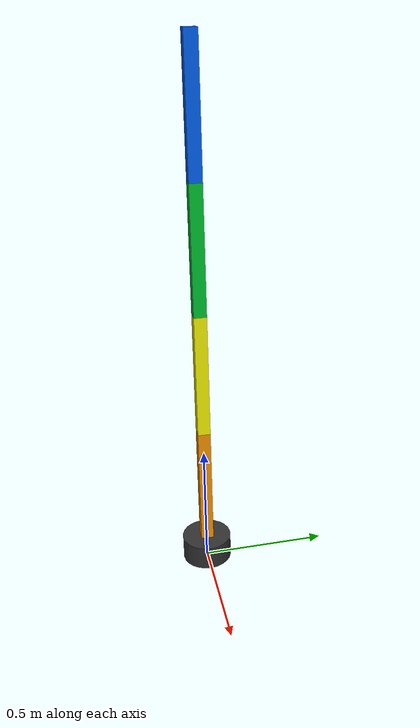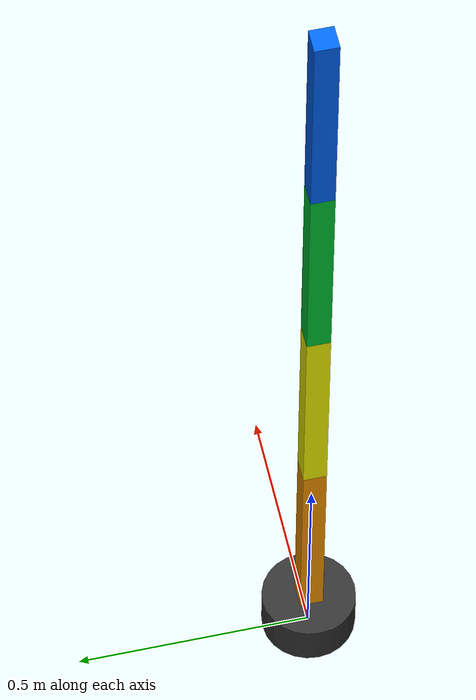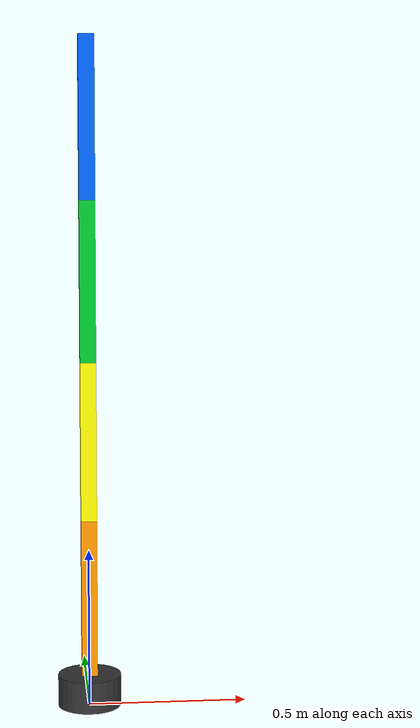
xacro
<?xml version="1.0"?>
<robot xmlns:xacro="http://www.ros.org/wiki/xacro" name="physical_ai_robot">

  <xacro:property name="base_radius" value="0.1"/>
  <xacro:property name="base_height" value="0.1"/>
  <xacro:property name="link_len" value="0.5"/>
  <xacro:property name="link_width" value="0.05"/>
  <xacro:property name="link_mass" value="1.0"/>

  <xacro:macro name="box_inertia" params="m w h d">
    <inertial>
      <mass value="${m}"/>
      <inertia ixx="${(m/12) * (h*h + d*d)}" ixy="0.0" ixz="0.0"
               iyy="${(m/12) * (w*w + d*d)}" iyz="0.0"
               izz="${(m/12) * (w*w + h*h)}"/>
    </inertial>
  </xacro:macro>

  <xacro:macro name="cylinder_inertia" params="m r h">
    <inertial>
      <mass value="${m}"/>
      <inertia ixx="${(m/12) * (3*r*r + h*h)}" ixy="0.0" ixz="0.0"
               iyy="${(m/12) * (3*r*r + h*h)}" iyz="0.0"
               izz="${(m/2) * (r*r)}"/>
    </inertial>
  </xacro:macro>

  <xacro:macro name="arm_link_macro" params="name color_name r g b">
    <link name="${name}">
      <visual>
        <geometry>
          <box size="${link_width} ${link_width} ${link_len}"/>
        </geometry>
        <origin xyz="0 0 ${link_len/2}" rpy="0 0 0"/>
        <material name="${color_name}">
          <color rgba="${r} ${g} ${b} 1"/>
        </material>
      </visual>
      <collision>
        <geometry>
          <box size="${link_width} ${link_width} ${link_len}"/>
        </geometry>
        <origin xyz="0 0 ${link_len/2}" rpy="0 0 0"/>
      </collision>
      <xacro:box_inertia m="${link_mass}" w="${link_width}" h="${link_len}" d="${link_width}"/>
    </link>
  </xacro:macro>

  <link name="world"/>

  <joint name="world_to_base_joint" type="fixed">
    <parent link="world"/>
    <child link="base_link"/>
    <origin xyz="0 0 0" rpy="0 0 0"/>
  </joint>

  <link name="base_link">
    <visual>
      <geometry>
        <cylinder length="${base_height}" radius="${base_radius}"/>
      </geometry>
      <origin xyz="0 0 ${base_height/2}" rpy="0 0 0"/>
      <material name="gray"><color rgba="0.2 0.2 0.2 1"/></material>
    </visual>
    <collision>
      <geometry><cylinder length="${base_height}" radius="${base_radius}"/></geometry>
      <origin xyz="0 0 ${base_height/2}" rpy="0 0 0"/>
    </collision>
    <xacro:cylinder_inertia m="10.0" r="${base_radius}" h="${base_height}"/>
  </link>

  <xacro:arm_link_macro name="link1" color_name="orange" r="1" g="0.6" b="0"/>

  <joint name="joint1" type="revolute">
    <parent link="base_link"/>
    <child link="link1"/>
    <origin xyz="0 0 ${base_height}" rpy="0 0 0"/>
    <axis xyz="0 0 1"/> <limit lower="-3.14159" upper="3.14159" effort="100" velocity="1.0"/>
  </joint>

  <xacro:arm_link_macro name="link2" color_name="yellow" r="1" g="1" b="0"/>

  <joint name="joint2" type="revolute">
    <parent link="link1"/>
    <child link="link2"/>
    <origin xyz="0 0 ${link_len}" rpy="0 0 0"/>
    <axis xyz="0 1 0"/> <limit lower="-1.57079" upper="1.57079" effort="100" velocity="1.0"/>
  </joint>

  <xacro:arm_link_macro name="link3" color_name="green" r="0" g="0.8" b="0.2"/>

  <joint name="joint3" type="revolute">
    <parent link="link2"/>
    <child link="link3"/>
    <origin xyz="0 0 ${link_len}" rpy="0 0 0"/>
    <axis xyz="0 1 0"/> <limit lower="-2.0944" upper="2.0944" effort="100" velocity="1.5"/>
  </joint>

  <xacro:arm_link_macro name="link4" color_name="blue" r="0" g="0.4" b="1"/>

  <joint name="joint4" type="revolute">
    <parent link="link3"/>
    <child link="link4"/>
    <origin xyz="0 0 ${link_len}" rpy="0 0 0"/>
    <axis xyz="0 0 1"/> <limit lower="-3.14159" upper="3.14159" effort="100" velocity="2.0"/>
  </joint>

  <xacro:include filename="$(find manipulation_basics)/urdf/robot.ros2_control.xacro" />

  <gazebo>
    <plugin filename="gz_ros2_control-system" name="gz_ros2_control::GazeboSimROS2ControlPlugin">
      <parameters>$(find manipulation_basics)/config/ros2_controllers.yaml</parameters>
    </plugin>
  </gazebo>

</robot>
